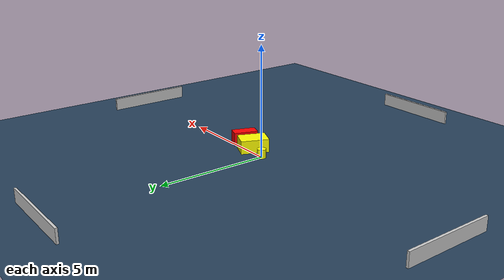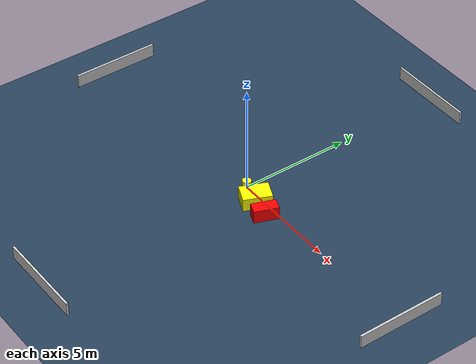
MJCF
<?xml version="1.0" ?>
<mujoco model="generated_environment">
  <option timestep="0.01" integrator="RK4" cone="elliptic"/>
  <default>
    <geom density="1"/>
  </default>
  <asset>
    <texture builtin="gradient" height="3072" name="skybox" rgb1="0.3 0.5 0.7" rgb2="0 0 0" type="skybox" width="512"/>
    <texture builtin="checker" height="300" name="groundplane" rgb1="0.2 0.3 0.4" rgb2="0.1 0.2 0.3" type="2d" width="300"/>
    <material name="groundplane" reflectance="0.2" texrepeat="5 5" texture="groundplane"/>
  </asset>
  <worldbody>
    <light dir="0 0 -1" directional="true" pos="0 0 1.5"/>
    <geom condim="3" friction="0.5 0.005 0.001" material="groundplane" name="floor" pos="0 0 0" size="0 0 0.05" type="plane"/>
    <body name="walls">
      <geom name="wall_1" condim="4" pos="-10.0 0.0 0.3" rgba="0.800000011920929 0.800000011920929 0.800000011920929 1.0" size="0.05 2.0 0.3" type="box"/>
      <geom name="wall_2" condim="4" pos="10.0 0.0 0.3" rgba="0.800000011920929 0.800000011920929 0.800000011920929 1.0" size="0.05 2.0 0.3" type="box"/>
      <geom name="wall_3" condim="4" pos="0.0 -10.0 0.3" rgba="0.800000011920929 0.800000011920929 0.800000011920929 1.0" size="2.0 0.05 0.3" type="box"/>
      <geom name="wall_4" condim="4" pos="0.0 10.0 0.3" rgba="0.800000011920929 0.800000011920929 0.800000011920929 1.0" size="2.0 0.05 0.3" type="box"/>
    </body>
    <body name="robot">
      <joint name="joint_x" type="slide" pos="0 0 0" axis="1 0 0"/>
      <joint name="joint_y" type="slide" pos="0 0 0" axis="0 1 0"/>
      <geom name="robot" type="cylinder" pos="0.0 0.0 0.2" size="0.2 0.2 0.0" mass="5.0" friction="1.0 0.005 0.0001" condim="4" rgba="1.0 1.0 0.0 1.0"/>
    </body>
    <body name="obstacle_1_movable">
      <geom name="obstacle_1_movable" condim="4" pos="0.9583799252418037 -0.2522771755228961 0.3" euler="0 0 336.6099556814757" friction="0.0 0.005 0.001" rgba="1.0 1.0 0.0 1.0" size="0.44350668007021526 0.6387145001649923 0.3" type="box" mass="0.1"/>
      <joint type="free"/>
    </body>
    <body name="obstacle_2_static">
      <geom name="obstacle_2_static" condim="4" pos="1.9087344328353526 -0.4794675609639844 0.3" euler="0 0 69.69296439244982" friction="0.0 0.005 0.001" rgba="1.0 0.0 0.0 1.0" size="0.5466650633205373 0.268299336861961 0.3" type="box"/>
    </body>
  </worldbody>
  <actuator>
    <motor name="actuator_x" joint="joint_x" gear="1" ctrlrange="-1 1"/>
    <motor name="actuator_y" joint="joint_y" gear="1" ctrlrange="-1 1"/>
  </actuator>
</mujoco>
